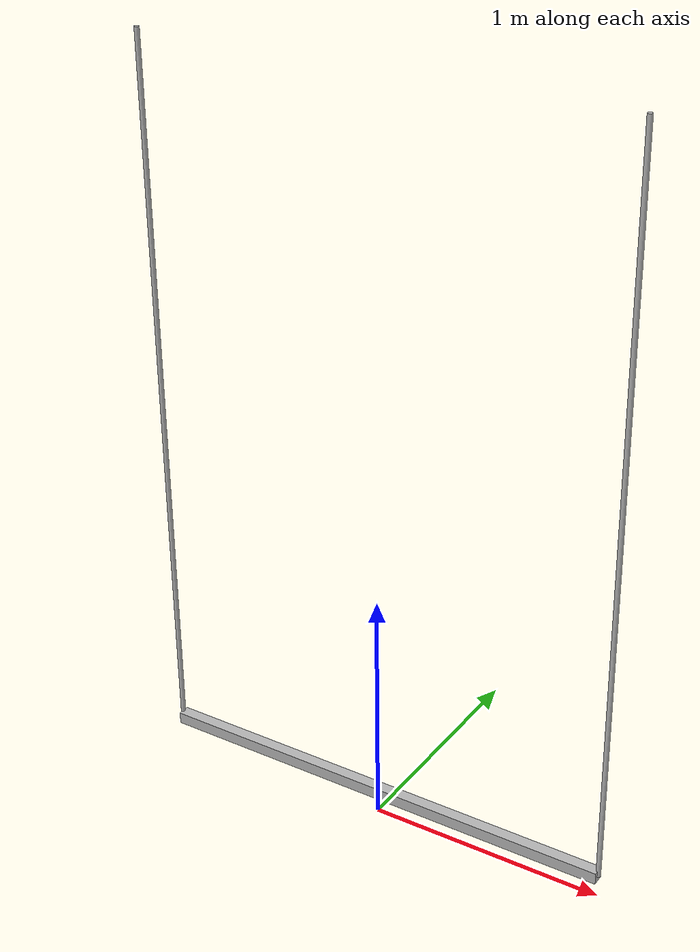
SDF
<?xml version='1.0'?>
<sdf version="1.4">
<model name="bar and joints">
  <static>false</static>

<!-- THIS LINK REPRESENTS THE PAYLOAD -->
    <link name="bar">
     <pose>0 0 0.1 0 0 0</pose>

      <inertial>
        <mass>1.0</mass>
        <inertia> <!-- interias are tricky to compute -->
          <!-- http://answers.gazebosim.org/question/4372/the-inertia-matrix-explained/ -->
          <ixx>0.083</ixx>       <!-- for a box: ixx = 0.083 * mass * (y*y + z*z) -->
          <ixy>0.0</ixy>         <!-- for a box: ixy = 0 -->
          <ixz>0.0</ixz>         <!-- for a box: ixz = 0 -->
          <iyy>0.083</iyy>       <!-- for a box: iyy = 0.083 * mass * (x*x + z*z) -->
          <iyz>0.0</iyz>         <!-- for a box: iyz = 0 -->
          <izz>0.083</izz>       <!-- for a box: izz = 0.083 * mass * (x*x + y*y) -->
        </inertia>
      </inertial>

      <!-- no collision -->
      <collision name="collision">
        <geometry>
          <box>
            <size>2 0.05 0.05</size>
          </box>
        </geometry>
      </collision>

      <visual name="visual">
        <geometry>
          <box>
            <size>2 0.05 0.05</size>
          </box>
        </geometry>
      </visual>

    </link>

<!-- THIS LINK REPRESENTS CABLE 1 -->
      <link name="cable_1">
        <pose>1 0 1.6 0 0 0</pose>

        <collision name="collision">
          <geometry>
            <cylinder>
              <radius>.01</radius>
              <length>3</length>
            </cylinder>
          </geometry>
        </collision>

        <visual name="visual">
          <geometry>
            <cylinder>
              <radius>.01</radius>
              <length>3</length>
            </cylinder>
          </geometry>
        </visual>
      </link>

<!-- THIS LINK REPRESENTS CABLE 2 -->
      <link name="cable_2">
        <pose>-1 0 1.6 0 0 0</pose>

        <collision name="collision">
          <geometry>
            <cylinder>
              <radius>.01</radius>
              <length>3</length>
            </cylinder>
          </geometry>
        </collision>

        <visual name="visual">
          <geometry>
            <cylinder>
              <radius>.01</radius>
              <length>3</length>
            </cylinder>
          </geometry>
        </visual>
      </link>

<!-- these are the JOINTS between the bar and the cables -->
      <joint type="revolute2" name="bar_cable1">
        <pose>0 0 -1.5 0 0 0</pose>

        <child>cable_1</child>
        <parent>bar</parent>

        <axis>
          <xyz>1 0 0</xyz>
        </axis>

        <axis2>
          <xyz>0 1 0</xyz>
        </axis2>

      </joint>

      <joint type="revolute2" name="bar_cable2">
        <pose>0 0 -1.5 0 0 0</pose>

        <child>cable_2</child>
        <parent>bar</parent>

        <axis>
          <xyz>1 0 0</xyz>
        </axis>

        <axis2>
          <xyz>0 1 0</xyz>
        </axis2>

      </joint>

  </model>
</sdf>
